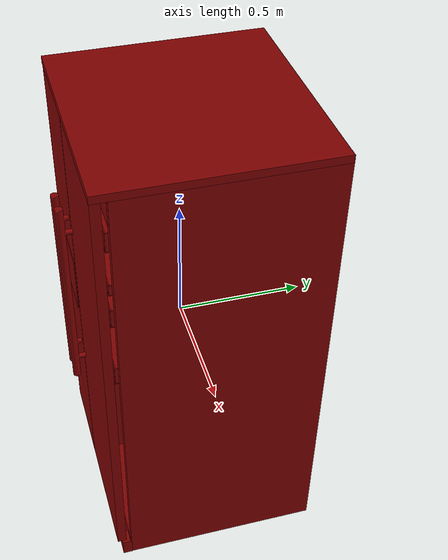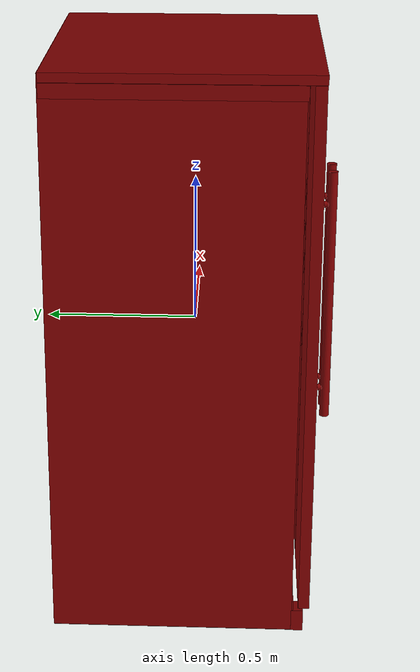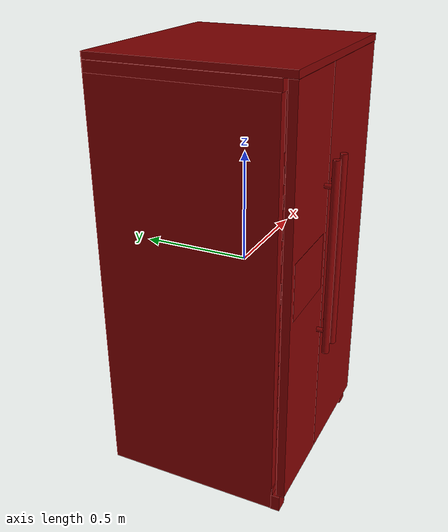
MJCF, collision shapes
<mujoco model="model">
  <compiler angle="radian"/>
  <asset>
    <mesh file="visuals/Body001.obj" name="Body001_vis"/>
    <mesh file="visuals/Body002_Clear.obj" name="Body002_Clear_vis"/>
    <mesh file="visuals/Door001.obj" name="Door001_vis"/>
    <mesh file="visuals/Door001_Clear.obj" name="Door001_Clear_vis"/>
    <mesh file="visuals/Door002.obj" name="Door002_vis"/>
    <mesh file="visuals/Door002_Clear.obj" name="Door002_Clear_vis"/>
    <mesh file="visuals/Drawer001.obj" name="Drawer001_vis"/>
    <mesh file="visuals/Drawer002.obj" name="Drawer002_vis"/>
    <mesh file="visuals/Drawer003.obj" name="Drawer003_vis"/>
    <mesh file="visuals/Drawer004.obj" name="Drawer004_vis"/>
    <mesh file="visuals/Drawer005.obj" name="Drawer005_vis"/>
    <mesh file="visuals/Drawer006.obj" name="Drawer006_vis"/>
    <mesh file="visuals/Drawer007.obj" name="Drawer007_vis"/>
    <texture file="visuals/T_BC001.png" name="Body001_material" type="2d"/>
    <material name="Body001_material" rgba="1 1 1 1.0" texture="Body001_material" shininess="0.7228040099143982" specular="0.8"/>
    <texture file="visuals/T_BC001.png" name="Body002_Clear_material" type="2d"/>
    <material name="Body002_Clear_material" rgba="1 1 1 0.4251968264579773" texture="Body002_Clear_material" shininess="0.5" specular="0.8"/>
    <texture file="visuals/T_BC001.png" name="Door001_material" type="2d"/>
    <material name="Door001_material" rgba="1 1 1 1.0" texture="Door001_material" shininess="0.7228040099143982" specular="0.8"/>
    <texture file="visuals/T_BC001.png" name="Door001_Clear_material" type="2d"/>
    <material name="Door001_Clear_material" rgba="1 1 1 0.4251968264579773" texture="Door001_Clear_material" shininess="0.5" specular="0.8"/>
    <texture file="visuals/T_BC001.png" name="Door002_material" type="2d"/>
    <material name="Door002_material" rgba="1 1 1 1.0" texture="Door002_material" shininess="0.7228040099143982" specular="0.8"/>
    <texture file="visuals/T_BC001.png" name="Door002_Clear_material" type="2d"/>
    <material name="Door002_Clear_material" rgba="1 1 1 0.4251968264579773" texture="Door002_Clear_material" shininess="0.5" specular="0.8"/>
    <texture file="visuals/T_BC001.png" name="Drawer001_material" type="2d"/>
    <material name="Drawer001_material" rgba="1 1 1 1.0" texture="Drawer001_material" shininess="0.7228040099143982" specular="0.8"/>
    <texture file="visuals/T_BC001.png" name="Drawer002_material" type="2d"/>
    <material name="Drawer002_material" rgba="1 1 1 1.0" texture="Drawer002_material" shininess="0.7228040099143982" specular="0.8"/>
    <texture file="visuals/T_BC001.png" name="Drawer003_material" type="2d"/>
    <material name="Drawer003_material" rgba="1 1 1 1.0" texture="Drawer003_material" shininess="0.7228040099143982" specular="0.8"/>
    <texture file="visuals/T_BC001.png" name="Drawer004_material" type="2d"/>
    <material name="Drawer004_material" rgba="1 1 1 1.0" texture="Drawer004_material" shininess="0.7228040099143982" specular="0.8"/>
    <texture file="visuals/T_BC001.png" name="Drawer005_material" type="2d"/>
    <material name="Drawer005_material" rgba="1 1 1 1.0" texture="Drawer005_material" shininess="0.7228040099143982" specular="0.8"/>
    <texture file="visuals/T_BC001.png" name="Drawer006_material" type="2d"/>
    <material name="Drawer006_material" rgba="1 1 1 1.0" texture="Drawer006_material" shininess="0.7228040099143982" specular="0.8"/>
    <texture file="visuals/T_BC001.png" name="Drawer007_material" type="2d"/>
    <material name="Drawer007_material" rgba="1 1 1 1.0" texture="Drawer007_material" shininess="0.7228040099143982" specular="0.8"/>
  </asset>
  <default>
    <default class="visual">
      <geom conaffinity="0" contype="0" group="1" type="mesh"/>
    </default>
    <default class="collision">
      <geom group="0" rgba="0.5 0 0 0.5"/>
    </default>
    <default class="spawn">
      <geom group="0" rgba="1 1 1 0.5" contype="0" conaffinity="0"/>
      <site group="0" rgba="1 1 1 0.5"/>
    </default>
    <default class="region">
      <geom group="1" conaffinity="0" contype="0" rgba="0 1 0 0"/>
    </default>
  </default>
  <worldbody>
    <body>
      <body name="object">
        <geom mesh="Body001_vis" type="mesh" solimp="0.998 0.998 0.001" solref="0.001 1" density="100" friction="0.95 0.3 0.1" class="visual" material="Body001_material"/>
        <geom class="collision" type="box" pos="0.18959122896194458 0.05818253755569458 0.8799152970314026" size="0.25953567028045654 0.3990899324417114 0.05621796101331711" quat="1.0 0.0 0.0 0.0"/>
        <geom class="collision" type="box" pos="0.0009982611518353224 0.441756010055542 0.00017643740284256637" size="0.4481288194656372 0.017898576334118843 0.9475670456886292" quat="1.0 0.0 0.0 0.0"/>
        <geom class="collision" type="box" pos="0.43895646929740906 0.058436278253793716 0.00017643740284256637" size="0.016016868874430656 0.40141767263412476 0.9475670456886292" quat="1.0 0.0 0.0 0.0"/>
        <geom class="collision" type="box" pos="-0.43486931920051575 0.058436278253793716 0.00017643740284256637" size="0.019876092672348022 0.40132734179496765 0.9475670456886292" quat="1.0 0.0 0.0 0.0"/>
        <geom class="collision" type="box" pos="2.7887028409168124e-05 0.02747405506670475 0.9344571232795715" size="0.45497027039527893 0.42980894446372986 0.01511151809245348" quat="1.0 0.0 0.0 0.0"/>
        <geom class="collision" type="box" pos="-0.07548540085554123 0.051525041460990906 -0.006091429386287928" size="0.024132326245307922 0.39910051226615906 0.9200156331062317" quat="1.0 0.0 0.0 0.0"/>
        <geom class="collision" type="box" pos="-0.2629220485687256 0.09088116884231567 -0.6056009531021118" size="0.173197403550148 0.35974442958831787 0.007823126390576363" quat="1.0 0.0 0.0 0.0"/>
        <geom class="collision" type="box" pos="-0.2629220485687256 0.09088116884231567 -0.3593347370624542" size="0.173197403550148 0.35974442958831787 0.0078231580555439" quat="1.0 0.0 0.0 0.0"/>
        <geom class="collision" type="box" pos="0.18642672896385193 0.1124727874994278 -0.21790079772472382" size="0.24038416147232056 0.2969996929168701 0.007823126390576363" quat="1.0 0.0 0.0 0.0"/>
        <geom class="collision" type="box" pos="0.18693335354328156 0.07380534708499908 -0.4156833589076996" size="0.24089078605175018 0.3356671631336212 0.0078231580555439" quat="1.0 0.0 0.0 0.0"/>
        <geom class="collision" type="box" pos="0.18693335354328156 0.07380534708499908 -0.6221714615821838" size="0.24089078605175018 0.3356671631336212 0.0078230956569314" quat="1.0 0.0 0.0 0.0"/>
        <geom class="collision" type="box" pos="0.41454946994781494 0.07198478281497955 0.008693575859069824" size="0.009805545210838318 0.2760608196258545 0.005919968243688345" quat="1.0 0.0 0.0 0.0"/>
        <geom class="collision" type="box" pos="-0.04574844613671303 0.07198478281497955 0.008693575859069824" size="0.009805545210838318 0.2760608196258545 0.005919968243688345" quat="1.0 0.0 0.0 0.0"/>
        <geom class="collision" type="box" pos="0.41454946994781494 0.07198478281497955 0.49186912178993225" size="0.009805545210838318 0.2760608196258545 0.005919968243688345" quat="1.0 0.0 0.0 0.0"/>
        <geom class="collision" type="box" pos="-0.04574844613671303 0.07198478281497955 0.49186912178993225" size="0.009805545210838318 0.2760608196258545 0.005919968243688345" quat="1.0 0.0 0.0 0.0"/>
        <geom class="collision" type="box" pos="-0.41330641508102417 0.07198478281497955 0.49315911531448364" size="0.009805545210838318 0.2760608196258545 0.005919968243688345" quat="1.0 0.0 0.0 0.0"/>
        <geom class="collision" type="box" pos="-0.10852186381816864 0.07198478281497955 0.49315911531448364" size="0.009805545210838318 0.2760608196258545 0.005919968243688345" quat="1.0 0.0 0.0 0.0"/>
        <geom class="collision" type="box" pos="-0.41330641508102417 0.07198478281497955 0.1717570573091507" size="0.009805545210838318 0.2760608196258545 0.005919968243688345" quat="1.0 0.0 0.0 0.0"/>
        <geom class="collision" type="box" pos="-0.10852186381816864 0.07198478281497955 0.1717570573091507" size="0.009805545210838318 0.2760608196258545 0.005919968243688345" quat="1.0 0.0 0.0 0.0"/>
        <geom class="collision" type="box" pos="-0.2563979923725128 0.05500462278723717 0.894343912601471" size="0.19848524034023285 0.4022783935070038 0.023743778467178345" quat="1.0 0.0 0.0 0.0"/>
        <geom class="collision" type="box" pos="0.1960643231868744 0.055109333246946335 0.8699206709861755" size="0.25683850049972534 0.4021736681461334 0.04816699028015137" quat="1.0 0.0 0.0 0.0"/>
        <geom class="collision" type="box" pos="0.00016309466445818543 0.054992955178022385 -0.8944204449653625" size="0.4533558487892151 0.4022900462150574 0.05515366047620773" quat="1.0 0.0 0.0 0.0"/>
        <geom class="collision" type="box" pos="0.4252990186214447 -0.3605630397796631 -0.9116199612617493" size="0.029702335596084595 0.020007407292723656 0.03795410320162773" quat="1.0 0.0 0.0 0.0"/>
        <geom class="collision" type="box" pos="-0.4254184067249298 -0.36056995391845703 -0.9115289449691772" size="0.02944943681359291 0.020014313980937004 0.03804513439536095" quat="1.0 0.0 0.0 0.0"/>
        <body name="Body002_Clear">
          <geom mesh="Body002_Clear_vis" type="mesh" solimp="0.998 0.998 0.001" solref="0.001 1" density="100" friction="0.95 0.3 0.1" class="visual" material="Body002_Clear_material"/>
          <geom class="collision" type="box" pos="-0.2619285583496094 0.06612826883792877 0.5065506100654602" size="0.16020195186138153 0.333356648683548 0.005285886116325855" quat="1.0 0.0 0.0 0.0"/>
          <geom class="collision" type="box" pos="-0.2616431713104248 0.06542140245437622 0.18752165138721466" size="0.15750616788864136 0.3326497972011566 0.005285938736051321" quat="1.0 0.0 0.0 0.0"/>
          <geom class="collision" type="box" pos="-0.2616431713104248 0.06542140245437622 -0.13954026997089386" size="0.15750616788864136 0.3326497972011566 0.005285931285470724" quat="1.0 0.0 0.0 0.0"/>
          <geom class="collision" type="box" pos="0.18476395308971405 0.06817471981048584 0.507149875164032" size="0.23851679265499115 0.3253078758716583 0.005285946186631918" quat="1.0 0.0 0.0 0.0"/>
          <geom class="collision" type="box" pos="0.18921372294425964 0.06817471981048584 0.022501319646835327" size="0.23514129221439362 0.3253078758716583 0.005285938736051321" quat="1.0 0.0 0.0 0.0"/>
        </body>
        <body name="Door001">
          <joint axis="0.0 0.0 -1.0" pos="-0.42675527930259705 -0.37689897418022156 0.09781890362501144" limited="true" name="Door001_joint" range="0.0 1.5707963267948966" type="hinge" damping="1" frictionloss="1" armature=".01" stiffness="0.05"/>
          <geom mesh="Door001_vis" type="mesh" solimp="0.998 0.998 0.001" solref="0.001 1" density="100" friction="0.95 0.3 0.1" class="visual" material="Door001_material"/>
          <geom class="collision" type="box" pos="-0.2666842043399811 -0.3823644518852234 0.025255579501390457" size="0.18504276871681213 0.018424075096845627 0.8917039632797241" quat="1.0 0.0 0.0 0.0"/>
          <geom class="collision" type="cylinder" pos="-0.12591570615768433 -0.44454118609428406 0.1299496442079544" size="0.015802860260009766 0.43129029870033264" quat="1.0 0.0 0.0 0.0"/>
          <geom class="collision" type="cylinder" pos="-0.12559297680854797 -0.42110177874565125 0.45060014724731445" size="0.01046145148575306 0.020187530666589737" quat="0.7071068286895752 0.7071067690849304 0.0 0.0"/>
          <geom class="collision" type="cylinder" pos="-0.12559297680854797 -0.42110177874565125 -0.1980651170015335" size="0.01046145148575306 0.020187530666589737" quat="0.7071068286895752 0.7071067690849304 0.0 0.0"/>
          <geom class="collision" type="box" pos="-0.26776042580604553 -0.3837219476699829 0.11726395040750504" size="0.15611831843852997 0.018424078822135925 0.12318645417690277" quat="1.0 0.0 0.0 0.0"/>
          <body name="Door001_Clear">
            <geom mesh="Door001_Clear_vis" type="mesh" solimp="0.998 0.998 0.001" solref="0.001 1" density="100" friction="0.95 0.3 0.1" class="visual" material="Door001_Clear_material"/>
            <geom class="collision" type="box" pos="-0.2667202651500702 -0.31501370668411255 0.5385845899581909" size="0.14274582266807556 0.032504741102457047 0.0022371821105480194" quat="1.0 0.0 0.0 0.0"/>
            <geom class="collision" type="box" pos="-0.2667202651500702 -0.28473934531211853 0.5720432996749878" size="0.14274582266807556 0.002237152075394988 0.03250475972890854" quat="1.0 0.0 0.0 0.0"/>
            <geom class="collision" type="box" pos="-0.2667202651500702 -0.3451758623123169 0.5720432996749878" size="0.14274582266807556 0.0022371369414031506 0.03250475972890854" quat="1.0 0.0 0.0 0.0"/>
            <geom class="collision" type="box" pos="-0.4093172252178192 -0.31463563442230225 0.5720432996749878" size="0.002237200504168868 0.0322568453848362 0.03250475972890854" quat="1.0 0.0 0.0 0.0"/>
            <geom class="collision" type="box" pos="-0.12592120468616486 -0.31463563442230225 0.5720432996749878" size="0.0022371828090399504 0.0322568453848362 0.03250475972890854" quat="1.0 0.0 0.0 0.0"/>
            <geom class="collision" type="box" pos="-0.12592120468616486 -0.31463563442230225 0.35271555185317993" size="0.0022371828090399504 0.0322568453848362 0.03250477463006973" quat="1.0 0.0 0.0 0.0"/>
            <geom class="collision" type="box" pos="-0.4093172252178192 -0.31463563442230225 0.35271555185317993" size="0.002237200504168868 0.0322568453848362 0.03250477463006973" quat="1.0 0.0 0.0 0.0"/>
            <geom class="collision" type="box" pos="-0.2667202651500702 -0.3451758623123169 0.35271555185317993" size="0.14274582266807556 0.0022371369414031506 0.03250477463006973" quat="1.0 0.0 0.0 0.0"/>
            <geom class="collision" type="box" pos="-0.2667202651500702 -0.28473934531211853 0.35271555185317993" size="0.14274582266807556 0.002237152075394988 0.03250477463006973" quat="1.0 0.0 0.0 0.0"/>
            <geom class="collision" type="box" pos="-0.2667202651500702 -0.31501370668411255 0.31925681233406067" size="0.14274582266807556 0.032504741102457047 0.002237152075394988" quat="1.0 0.0 0.0 0.0"/>
            <geom class="collision" type="box" pos="-0.12592120468616486 -0.31463563442230225 0.10848008096218109" size="0.0022371828090399504 0.0322568453848362 0.03250475600361824" quat="1.0 0.0 0.0 0.0"/>
            <geom class="collision" type="box" pos="-0.4093172252178192 -0.31463563442230225 0.10848008096218109" size="0.002237200504168868 0.0322568453848362 0.03250475600361824" quat="1.0 0.0 0.0 0.0"/>
            <geom class="collision" type="box" pos="-0.2667202651500702 -0.3451758623123169 0.10848008096218109" size="0.14274582266807556 0.0022371369414031506 0.03250475600361824" quat="1.0 0.0 0.0 0.0"/>
            <geom class="collision" type="box" pos="-0.2667202651500702 -0.28473934531211853 0.10848008096218109" size="0.14274582266807556 0.002237152075394988 0.03250475600361824" quat="1.0 0.0 0.0 0.0"/>
            <geom class="collision" type="box" pos="-0.2667202651500702 -0.31501370668411255 0.07502136379480362" size="0.14274582266807556 0.032504741102457047 0.0022371294908225536" quat="1.0 0.0 0.0 0.0"/>
            <geom class="collision" type="box" pos="-0.2667202651500702 -0.28473934531211853 0.45979422330856323" size="0.14274582266807556 0.002237152075394988 0.019442621618509293" quat="1.0 0.0 0.0 0.0"/>
            <geom class="collision" type="box" pos="-0.2667202651500702 -0.3451758623123169 0.45979422330856323" size="0.14274582266807556 0.0022371369414031506 0.019442621618509293" quat="1.0 0.0 0.0 0.0"/>
            <geom class="collision" type="box" pos="-0.4093172252178192 -0.31463563442230225 0.45979422330856323" size="0.002237200504168868 0.0322568453848362 0.019442621618509293" quat="1.0 0.0 0.0 0.0"/>
            <geom class="collision" type="box" pos="-0.12592120468616486 -0.31463563442230225 0.45979422330856323" size="0.0022371828090399504 0.0322568453848362 0.019442621618509293" quat="1.0 0.0 0.0 0.0"/>
          </body>
        </body>
        <body name="Door002">
          <joint axis="0.0 0.0 1.0" pos="0.42672601342201233 -0.37495362758636475 0.0996796116232872" limited="true" name="Door002_joint" range="0.0 1.5707963267948966" type="hinge" damping="1" frictionloss="1" armature=".01" stiffness="0.05"/>
          <geom mesh="Door002_vis" type="mesh" solimp="0.998 0.998 0.001" solref="0.001 1" density="100" friction="0.95 0.3 0.1" class="visual" material="Door002_material"/>
          <geom class="collision" type="cylinder" pos="-0.03658199682831764 -0.42110177874565125 -0.1980651170015335" size="0.010461447760462761 0.020187530666589737" quat="0.7071068286895752 0.7071067690849304 0.0 0.0"/>
          <geom class="collision" type="cylinder" pos="-0.037368711084127426 -0.42110177874565125 0.45060014724731445" size="0.010461447760462761 0.020187530666589737" quat="0.7071068286895752 0.7071067690849304 0.0 0.0"/>
          <geom class="collision" type="cylinder" pos="-0.036718107759952545 -0.444355309009552 0.1299496442079544" size="0.015873899683356285 0.43129029870033264" quat="1.0 0.0 0.0 0.0"/>
          <geom class="collision" type="box" pos="0.18605169653892517 -0.3823644518852234 0.025255579501390457" size="0.2619800567626953 0.018424075096845627 0.8917039632797241" quat="1.0 0.0 0.0 0.0"/>
          <body name="Door002_Clear">
            <geom mesh="Door002_Clear_vis" type="mesh" solimp="0.998 0.998 0.001" solref="0.001 1" density="100" friction="0.95 0.3 0.1" class="visual" material="Door002_Clear_material"/>
            <geom class="collision" type="box" pos="0.19549089670181274 -0.31043457984924316 0.023607749491930008" size="0.16924677789211273 0.03708387166261673 0.0022371350787580013" quat="1.0 0.0 0.0 0.0"/>
            <geom class="collision" type="box" pos="0.19549089670181274 -0.27558109164237976 0.06264669448137283" size="0.16924677789211273 0.002237121807411313 0.0380849726498127" quat="1.0 0.0 0.0 0.0"/>
            <geom class="collision" type="box" pos="0.19549089670181274 -0.3451758623123169 0.06264668703079224" size="0.16924677789211273 0.0022371369414031506 0.0380849726498127" quat="1.0 0.0 0.0 0.0"/>
            <geom class="collision" type="box" pos="0.026393001899123192 -0.31005650758743286 0.06264669448137283" size="0.00223718723282218 0.03683596849441528 0.038084980100393295" quat="1.0 0.0 0.0 0.0"/>
            <geom class="collision" type="box" pos="0.3627909719944 -0.31005650758743286 0.06264669448137283" size="0.0022371828090399504 0.03683596849441528 0.038084980100393295" quat="1.0 0.0 0.0 0.0"/>
            <geom class="collision" type="box" pos="0.19549089670181274 -0.31043457984924316 0.31353986263275146" size="0.16924677789211273 0.03708387166261673 0.002237152075394988" quat="1.0 0.0 0.0 0.0"/>
            <geom class="collision" type="box" pos="0.19549089670181274 -0.27558109164237976 0.3525788187980652" size="0.16924677789211273 0.002237121807411313 0.0380849726498127" quat="1.0 0.0 0.0 0.0"/>
            <geom class="collision" type="box" pos="0.19549089670181274 -0.3451758623123169 0.3525788187980652" size="0.16924677789211273 0.0022371369414031506 0.0380849726498127" quat="1.0 0.0 0.0 0.0"/>
            <geom class="collision" type="box" pos="0.026393001899123192 -0.31005650758743286 0.3525788187980652" size="0.00223718723282218 0.03683596849441528 0.038085002452135086" quat="1.0 0.0 0.0 0.0"/>
            <geom class="collision" type="box" pos="0.3627909719944 -0.31005650758743286 0.3525788187980652" size="0.0022371828090399504 0.03683596849441528 0.038085002452135086" quat="1.0 0.0 0.0 0.0"/>
            <geom class="collision" type="box" pos="0.19549089670181274 -0.31043457984924316 0.6533429622650146" size="0.16924677789211273 0.03708387166261673 0.002237152075394988" quat="1.0 0.0 0.0 0.0"/>
            <geom class="collision" type="box" pos="0.19549089670181274 -0.27558109164237976 0.6923818588256836" size="0.16924677789211273 0.002237121807411313 0.03808498755097389" quat="1.0 0.0 0.0 0.0"/>
            <geom class="collision" type="box" pos="0.19549089670181274 -0.3451758623123169 0.6923818588256836" size="0.16924677789211273 0.0022371369414031506 0.03808498755097389" quat="1.0 0.0 0.0 0.0"/>
            <geom class="collision" type="box" pos="0.026393001899123192 -0.31005650758743286 0.6923818588256836" size="0.00223718723282218 0.03683596849441528 0.03808498755097389" quat="1.0 0.0 0.0 0.0"/>
            <geom class="collision" type="box" pos="0.3627909719944 -0.31005650758743286 0.6923818588256836" size="0.0022371828090399504 0.03683596849441528 0.03808498755097389" quat="1.0 0.0 0.0 0.0"/>
            <geom class="collision" type="box" pos="0.19549089670181274 -0.31043457984924316 0.4631336033344269" size="0.16924677789211273 0.03708387166261673 0.0022371369414031506" quat="1.0 0.0 0.0 0.0"/>
            <geom class="collision" type="box" pos="0.19549088180065155 -0.27558109164237976 0.4855217933654785" size="0.16924677789211273 0.002237121807411313 0.021434303373098373" quat="1.0 0.0 0.0 0.0"/>
            <geom class="collision" type="box" pos="0.19549089670181274 -0.3451758623123169 0.4855217933654785" size="0.16924677789211273 0.0022371369414031506 0.021434303373098373" quat="1.0 0.0 0.0 0.0"/>
            <geom class="collision" type="box" pos="0.026393000036478043 -0.31005650758743286 0.4855217933654785" size="0.00223718723282218 0.03683596849441528 0.021434303373098373" quat="1.0 0.0 0.0 0.0"/>
            <geom class="collision" type="box" pos="0.3627909719944 -0.31005650758743286 0.4855217933654785" size="0.0022371828090399504 0.03683596849441528 0.021434303373098373" quat="1.0 0.0 0.0 0.0"/>
          </body>
        </body>
        <body name="Drawer001">
          <joint axis="0.0 -1.0 0.0" pos="-0.24865461885929108 -0.017918430268764496 -0.2642907500267029" limited="true" name="Drawer001_joint" range="0.0 0.4" type="slide" damping="1" frictionloss="1" armature=".01" stiffness="0.05"/>
          <geom mesh="Drawer001_vis" type="mesh" solimp="0.998 0.998 0.001" solref="0.001 1" density="100" friction="0.95 0.3 0.1" class="visual" material="Drawer001_material"/>
          <geom class="collision" type="box" pos="-0.1124996766448021 -0.0050514377653598785 -0.2603358328342438" size="0.009566756896674633 0.2201303094625473 0.08353892713785172" quat="1.0 0.0 0.0 0.0"/>
          <geom class="collision" type="box" pos="-0.24864104390144348 0.2255794107913971 -0.25591346621513367" size="0.14362436532974243 0.011887507513165474 0.07921136915683746" quat="1.0 0.0 0.0 0.0"/>
          <geom class="collision" type="box" pos="-0.2486410290002823 -0.23344916105270386 -0.25946244597435" size="0.143624410033226 0.009566661901772022 0.08273790031671524" quat="1.0 0.0 0.0 0.0"/>
          <geom class="collision" type="box" pos="-0.38250625133514404 -0.0050514377653598785 -0.2603358328342438" size="0.009566735476255417 0.2201305627822876 0.08353901654481888" quat="1.0 0.0 0.0 0.0"/>
          <geom class="collision" type="box" pos="-0.24856066703796387 -0.002395123243331909 -0.32403725385665894" size="0.14448028802871704 0.23951439559459686 0.026976007968187332" quat="1.0 0.0 0.0 0.0"/>
          <geom class="collision" type="box" pos="-0.24868275225162506 -0.25565993785858154 -0.18421171605587006" size="0.14201804995536804 0.01721375808119774 0.005844409577548504" quat="1.0 0.0 0.0 0.0"/>
          <geom class="collision" type="box" pos="-0.24868275225162506 -0.26886311173439026 -0.20266824960708618" size="0.14201804995536804 0.004010598175227642 0.013608235865831375" quat="1.0 0.0 0.0 0.0"/>
        </body>
        <body name="Drawer002">
          <joint axis="0.0 -1.0 0.0" pos="-0.24865461885929108 -0.017918437719345093 -0.5060727596282959" limited="true" name="Drawer002_joint" range="0.0 0.4" type="slide" damping="1" frictionloss="1" armature=".01" stiffness="0.05"/>
          <geom mesh="Drawer002_vis" type="mesh" solimp="0.998 0.998 0.001" solref="0.001 1" density="100" friction="0.95 0.3 0.1" class="visual" material="Drawer002_material"/>
          <geom class="collision" type="box" pos="-0.24832412600517273 -0.002721790224313736 -0.5682692527770996" size="0.1439076066017151 0.23920853435993195 0.026084385812282562" quat="1.0 0.0 0.0 0.0"/>
          <geom class="collision" type="box" pos="-0.38250625133514404 -0.0050514377653598785 -0.5051441192626953" size="0.009566737338900566 0.2201307713985443 0.0865643173456192" quat="1.0 0.0 0.0 0.0"/>
          <geom class="collision" type="box" pos="-0.24864104390144348 -0.23344916105270386 -0.5051441192626953" size="0.14362475275993347 0.00956668145954609 0.0865643247961998" quat="1.0 0.0 0.0 0.0"/>
          <geom class="collision" type="box" pos="-0.24864104390144348 0.2255794107913971 -0.5051442384719849" size="0.14362481236457825 0.01188753917813301 0.08656439930200577" quat="1.0 0.0 0.0 0.0"/>
          <geom class="collision" type="box" pos="-0.1124996766448021 -0.005051407963037491 -0.5051442384719849" size="0.009566771797835827 0.22013099491596222 0.08656442165374756" quat="1.0 0.0 0.0 0.0"/>
          <geom class="collision" type="box" pos="-0.24868275225162506 -0.25565993785858154 -0.42607825994491577" size="0.14201804995536804 0.01721375808119774 0.005844409577548504" quat="1.0 0.0 0.0 0.0"/>
          <geom class="collision" type="box" pos="-0.24868275225162506 -0.26886311173439026 -0.4445347785949707" size="0.14201804995536804 0.004010598175227642 0.013608235865831375" quat="1.0 0.0 0.0 0.0"/>
        </body>
        <body name="Drawer003">
          <joint axis="0.0 -1.0 0.0" pos="-0.24865461885929108 -0.0179184190928936 -0.7452696561813354" limited="true" name="Drawer003_joint" range="0.0 0.4" type="slide" damping="1" frictionloss="1" armature=".01" stiffness="0.05"/>
          <geom mesh="Drawer003_vis" type="mesh" solimp="0.998 0.998 0.001" solref="0.001 1" density="100" friction="0.95 0.3 0.1" class="visual" material="Drawer003_material"/>
          <geom class="collision" type="box" pos="-0.1124996766448021 -0.0050514377653598785 -0.744270384311676" size="0.009566782042384148 0.22013108432292938 0.08656448870897293" quat="1.0 0.0 0.0 0.0"/>
          <geom class="collision" type="box" pos="-0.24864104390144348 0.22570262849330902 -0.744270384311676" size="0.14362499117851257 0.011764447204768658 0.08656449615955353" quat="1.0 0.0 0.0 0.0"/>
          <geom class="collision" type="box" pos="-0.2486410290002823 -0.23344916105270386 -0.744270384311676" size="0.14362505078315735 0.00956670194864273 0.0865645632147789" quat="1.0 0.0 0.0 0.0"/>
          <geom class="collision" type="box" pos="-0.38250625133514404 -0.005051407963037491 -0.744270384311676" size="0.009566779248416424 0.2201313078403473 0.0865645706653595" quat="1.0 0.0 0.0 0.0"/>
          <geom class="collision" type="box" pos="-0.24965235590934753 -0.0050514377653598785 -0.7993665933609009" size="0.12738767266273499 0.22013278305530548 0.01962008886039257" quat="1.0 0.0 0.0 0.0"/>
          <geom class="collision" type="box" pos="-0.24868275225162506 -0.25565993785858154 -0.664338231086731" size="0.14201804995536804 0.01721375808119774 0.005844409577548504" quat="1.0 0.0 0.0 0.0"/>
          <geom class="collision" type="box" pos="-0.24868275225162506 -0.26886311173439026 -0.6827948093414307" size="0.14201804995536804 0.004010598175227642 0.013608235865831375" quat="1.0 0.0 0.0 0.0"/>
        </body>
        <body name="Drawer004">
          <joint axis="0.0 -1.0 0.0" pos="0.17909014225006104 -0.01393619179725647 -0.12423187494277954" limited="true" name="Drawer004_joint" range="0.0 0.4" type="slide" damping="1" frictionloss="1" armature=".01" stiffness="0.05"/>
          <geom mesh="Drawer004_vis" type="mesh" solimp="0.998 0.998 0.001" solref="0.001 1" density="100" friction="0.95 0.3 0.1" class="visual" material="Drawer004_material"/>
          <geom class="collision" type="box" pos="0.1790924072265625 0.00021125003695487976 -0.18357038497924805" size="0.21245886385440826 0.23668673634529114 0.01802760548889637" quat="1.0 0.0 0.0 0.0"/>
          <geom class="collision" type="box" pos="-0.023219138383865356 -0.0018224194645881653 -0.11775030195713043" size="0.011832806281745434 0.2233605533838272 0.07197927683591843" quat="1.0 0.0 0.0 0.0"/>
          <geom class="collision" type="box" pos="0.1793118119239807 -0.22899943590164185 -0.11775030195713043" size="0.21309185028076172 0.0095667140558362 0.07197929918766022" quat="1.0 0.0 0.0 0.0"/>
          <geom class="collision" type="box" pos="0.1796068400144577 0.2255794107913971 -0.11775030940771103" size="0.21338695287704468 0.011887588538229465 0.0719793289899826" quat="1.0 0.0 0.0 0.0"/>
          <geom class="collision" type="box" pos="0.3811049163341522 -0.0018224343657493591 -0.11775030195713043" size="0.011164355091750622 0.22336076200008392 0.07197935879230499" quat="1.0 0.0 0.0 0.0"/>
          <geom class="collision" type="box" pos="0.17867150902748108 -0.24769547581672668 -0.05285760015249252" size="0.2098865509033203 0.01721375808119774 0.005844409577548504" quat="1.0 0.0 0.0 0.0"/>
          <geom class="collision" type="box" pos="0.17867150902748108 -0.2608986496925354 -0.07131413370370865" size="0.2098865509033203 0.004010598175227642 0.013608235865831375" quat="1.0 0.0 0.0 0.0"/>
        </body>
        <body name="Drawer005">
          <joint axis="0.0 -1.0 0.0" pos="0.17909014225006104 -0.01393619179725647 -0.3239293098449707" limited="true" name="Drawer005_joint" range="0.0 0.4" type="slide" damping="1" frictionloss="1" armature=".01" stiffness="0.05"/>
          <geom mesh="Drawer005_vis" type="mesh" solimp="0.998 0.998 0.001" solref="0.001 1" density="100" friction="0.95 0.3 0.1" class="visual" material="Drawer005_material"/>
          <geom class="collision" type="box" pos="0.38029900193214417 -0.0023914948105812073 -0.31967470049858093" size="0.011959402821958065 0.22279174625873566 0.07342226803302765" quat="1.0 0.0 0.0 0.0"/>
          <geom class="collision" type="box" pos="0.17923715710639954 0.22592203319072723 -0.31967470049858093" size="0.21301749348640442 0.011545054614543915 0.07342227548360825" quat="1.0 0.0 0.0 0.0"/>
          <geom class="collision" type="box" pos="0.17923714220523834 -0.22353315353393555 -0.31967470049858093" size="0.2130175083875656 0.00956672616302967 0.07342231273651123" quat="1.0 0.0 0.0 0.0"/>
          <geom class="collision" type="box" pos="-0.02303919568657875 -0.002993490546941757 -0.31967470049858093" size="0.011443853378295898 0.2221900224685669 0.07342233508825302" quat="1.0 0.0 0.0 0.0"/>
          <geom class="collision" type="box" pos="0.1792045384645462 0.0023509636521339417 -0.38352787494659424" size="0.2127467691898346 0.23426400125026703 0.01857742853462696" quat="1.0 0.0 0.0 0.0"/>
          <geom class="collision" type="box" pos="0.17867150902748108 -0.24769547581672668 -0.2522381544113159" size="0.2098865509033203 0.01721375808119774 0.005844409577548504" quat="1.0 0.0 0.0 0.0"/>
          <geom class="collision" type="box" pos="0.17867150902748108 -0.2608986496925354 -0.27069470286369324" size="0.2098865509033203 0.004010598175227642 0.013608235865831375" quat="1.0 0.0 0.0 0.0"/>
        </body>
        <body name="Drawer006">
          <joint axis="0.0 -1.0 0.0" pos="0.17909014225006104 -0.013936210423707962 -0.5233203172683716" limited="true" name="Drawer006_joint" range="0.0 0.4" type="slide" damping="1" frictionloss="1" armature=".01" stiffness="0.05"/>
          <geom mesh="Drawer006_vis" type="mesh" solimp="0.998 0.998 0.001" solref="0.001 1" density="100" friction="0.95 0.3 0.1" class="visual" material="Drawer006_material"/>
          <geom class="collision" type="box" pos="0.1782468557357788 -0.000668700784444809 -0.6006120443344116" size="0.21283270418643951 0.23672060668468475 0.011206978932023048" quat="1.0 0.0 0.0 0.0"/>
          <geom class="collision" type="box" pos="-0.023306122049689293 -0.0050514377653598785 -0.5222383737564087" size="0.011097323149442673 0.2201322317123413 0.08520643413066864" quat="1.0 0.0 0.0 0.0"/>
          <geom class="collision" type="box" pos="0.1771976798772812 -0.22899943590164185 -0.5222383737564087" size="0.2109784632921219 0.009566753171384335 0.08520645648241043" quat="1.0 0.0 0.0 0.0"/>
          <geom class="collision" type="box" pos="0.1771976798772812 0.22527353465557098 -0.5222383737564087" size="0.21097852289676666 0.012517837807536125 0.08520650863647461" quat="1.0 0.0 0.0 0.0"/>
          <geom class="collision" type="box" pos="0.3817988634109497 -0.0050514377653598785 -0.5222383737564087" size="0.011753080412745476 0.2201324999332428 0.0852065160870552" quat="1.0 0.0 0.0 0.0"/>
          <geom class="collision" type="box" pos="0.17867150902748108 -0.2608986496925354 -0.46080681681632996" size="0.2098865509033203 0.004010598175227642 0.013608235865831375" quat="1.0 0.0 0.0 0.0"/>
          <geom class="collision" type="box" pos="0.17867150902748108 -0.24769547581672668 -0.44235026836395264" size="0.2098865509033203 0.01721375808119774 0.005844409577548504" quat="1.0 0.0 0.0 0.0"/>
        </body>
        <body name="Drawer007">
          <joint axis="0.0 -1.0 0.0" pos="0.17909014225006104 -0.01393619179725647 -0.7452696561813354" limited="true" name="Drawer007_joint" range="0.0 0.4" type="slide" damping="1" frictionloss="1" armature=".01" stiffness="0.05"/>
          <geom mesh="Drawer007_vis" type="mesh" solimp="0.998 0.998 0.001" solref="0.001 1" density="100" friction="0.95 0.3 0.1" class="visual" material="Drawer007_material"/>
          <geom class="collision" type="box" pos="0.38074564933776855 -0.0050514377653598785 -0.7437748312950134" size="0.01034089270979166 0.22013254463672638 0.085206538438797" quat="1.0 0.0 0.0 0.0"/>
          <geom class="collision" type="box" pos="0.1771976798772812 0.22513778507709503 -0.7437748312950134" size="0.21097877621650696 0.012329285964369774 0.0852065458893776" quat="1.0 0.0 0.0 0.0"/>
          <geom class="collision" type="box" pos="0.17719770967960358 -0.22899943590164185 -0.7437748312950134" size="0.21097880601882935 0.009566773660480976 0.08520655333995819" quat="1.0 0.0 0.0 0.0"/>
          <geom class="collision" type="box" pos="-0.02313416078686714 -0.0050514377653598785 -0.7437748312950134" size="0.011200624518096447 0.22013279795646667 0.08520662039518356" quat="1.0 0.0 0.0 0.0"/>
          <geom class="collision" type="box" pos="0.17618638277053833 -0.005051452666521072 -0.8052987456321716" size="0.19473621249198914 0.22013284265995026 0.026729857549071312" quat="1.0 0.0 0.0 0.0"/>
          <geom class="collision" type="box" pos="0.17867150902748108 -0.24769547581672668 -0.6643404960632324" size="0.2098865509033203 0.01721375808119774 0.005844409577548504" quat="1.0 0.0 0.0 0.0"/>
          <geom class="collision" type="box" pos="0.17867150902748108 -0.2608986496925354 -0.6827970147132874" size="0.2098865509033203 0.004010598175227642 0.013608235865831375" quat="1.0 0.0 0.0 0.0"/>
        </body>
        <geom class="region" name="reg_main" type="box" pos="0.0 0.028806794434785843 0.0" size="0.4550013542175293 0.4311416745185852 0.9496856927871704"/>
      </body>
    </body>
  </worldbody>
  <actuator>
    <motor name="Door001_joint_actuator" joint="Door001_joint" gear="50"/>
    <motor name="Door002_joint_actuator" joint="Door002_joint" gear="50"/>
    <motor name="Drawer001_joint_actuator" joint="Drawer001_joint" gear="50"/>
    <motor name="Drawer002_joint_actuator" joint="Drawer002_joint" gear="50"/>
    <motor name="Drawer003_joint_actuator" joint="Drawer003_joint" gear="50"/>
    <motor name="Drawer004_joint_actuator" joint="Drawer004_joint" gear="50"/>
    <motor name="Drawer005_joint_actuator" joint="Drawer005_joint" gear="50"/>
    <motor name="Drawer006_joint_actuator" joint="Drawer006_joint" gear="50"/>
    <motor name="Drawer007_joint_actuator" joint="Drawer007_joint" gear="50"/>
  </actuator>
</mujoco>
